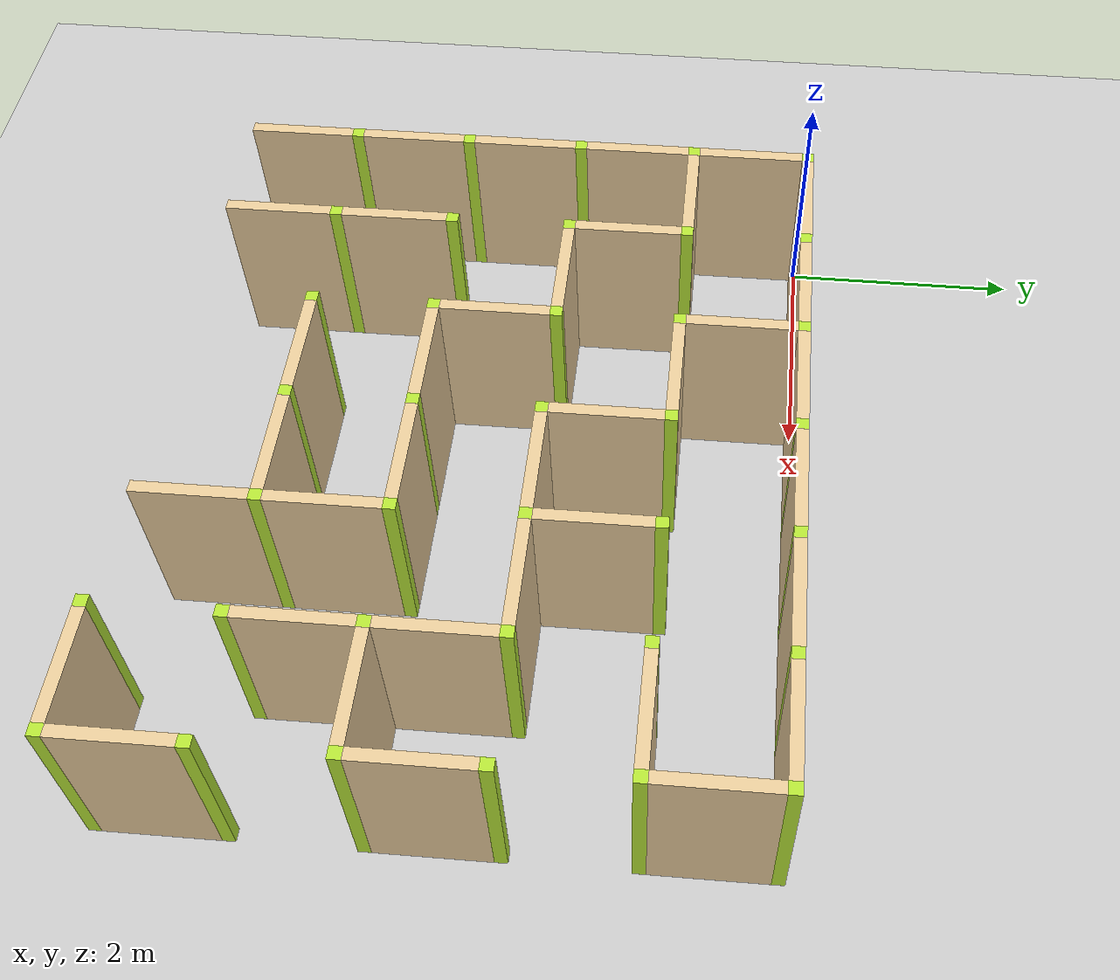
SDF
<sdf version="1.4">
 <world name="maze_world">
  <model name="ground">
   <static>true</static>
   <link name="ground_link">
    <collision name="collision1"><geometry><plane><normal>0 0 1</normal></plane></geometry></collision>
    <visual name="visual1"><geometry><plane><normal>0 0 1</normal><size>100 100</size></plane></geometry></visual>
   </link>
  </model>
  <model name="Untitled">
   <link name="Wall_0_0_h">
    <collision name="Wall_0_Collision">
     <geometry><box><size>0.9 0.1 1.5</size></box></geometry>
     <pose>0 0 0.75 0 -0 0</pose>
    </collision>
    <visual name="Wall_0_Visual">
     <pose>0 0 0.75 0 -0 0</pose>
     <geometry><box><size>0.9 0.1 1.5</size></box></geometry>
     <material>
      <script><uri>file://media/materials/scripts/gazebo.material</uri><name>Gazebo/Grey</name></script>
      <ambient>0.921569 0.807843 0.615686 1</ambient>
     </material>
     <meta><layer>0</layer></meta>
    </visual>
    <pose>0.5 0 0 0 -0 0</pose>
   </link>
   <link name="Wall_0_0_v">
    <collision name="Wall_0_Collision">
     <geometry><box><size>0.9 0.1 1.5</size></box></geometry>
     <pose>0 0 0.75 0 -0 0</pose>
    </collision>
    <visual name="Wall_0_Visual">
     <pose>0 0 0.75 0 -0 0</pose>
     <geometry><box><size>0.9 0.1 1.5</size></box></geometry>
     <material>
      <script><uri>file://media/materials/scripts/gazebo.material</uri><name>Gazebo/Grey</name></script>
      <ambient>0.921569 0.807843 0.615686 1</ambient>
     </material>
     <meta><layer>0</layer></meta>
    </visual>
    <pose>0 -0.5 0 0 -0 1.5708</pose>
   </link>
   <link name="Joint_0_0">
    <collision name="Wall_2_Collision">
     <geometry><box><size>0.1 0.1 1.5</size></box></geometry>
     <pose>0 0 0.75 0 -0 0</pose>
    </collision>
    <visual name="Wall_2_Visual">
     <pose>0 0 0.75 0 -0 0</pose>
     <geometry><box><size>0.1 0.1 1.5</size></box></geometry>
     <material>
      <script><uri>file://media/materials/scripts/gazebo.material</uri><name>Gazebo/Grey</name></script>
      <ambient>0.721569 0.907843 0.215686 1</ambient>
     </material>
     <meta><layer>0</layer></meta>
    </visual>
   </link>
   <link name="Wall_1_0_h">
    <collision name="Wall_0_Collision">
     <geometry><box><size>0.9 0.1 1.5</size></box></geometry>
     <pose>0 0 0.75 0 -0 0</pose>
    </collision>
    <visual name="Wall_0_Visual">
     <pose>0 0 0.75 0 -0 0</pose>
     <geometry><box><size>0.9 0.1 1.5</size></box></geometry>
     <material>
      <script><uri>file://media/materials/scripts/gazebo.material</uri><name>Gazebo/Grey</name></script>
      <ambient>0.921569 0.807843 0.615686 1</ambient>
     </material>
     <meta><layer>0</layer></meta>
    </visual>
    <pose>1.5 0 0 0 -0 0</pose>
   </link>
   <link name="Joint_1_0">
    <collision name="Wall_2_Collision">
     <geometry><box><size>0.1 0.1 1.5</size></box></geometry>
     <pose>0 0 0.75 0 -0 0</pose>
    </collision>
    <visual name="Wall_2_Visual">
     <pose>0 0 0.75 0 -0 0</pose>
     <geometry><box><size>0.1 0.1 1.5</size></box></geometry>
     <material>
      <script><uri>file://media/materials/scripts/gazebo.material</uri><name>Gazebo/Grey</name></script>
      <ambient>0.721569 0.907843 0.215686 1</ambient>
     </material>
     <meta><layer>0</layer></meta>
    </visual>
    <pose>1 0 0 0 -0 0</pose>
   </link>
   <link name="Wall_2_0_h">
    <collision name="Wall_0_Collision">
     <geometry><box><size>0.9 0.1 1.5</size></box></geometry>
     <pose>0 0 0.75 0 -0 0</pose>
    </collision>
    <visual name="Wall_0_Visual">
     <pose>0 0 0.75 0 -0 0</pose>
     <geometry><box><size>0.9 0.1 1.5</size></box></geometry>
     <material>
      <script><uri>file://media/materials/scripts/gazebo.material</uri><name>Gazebo/Grey</name></script>
      <ambient>0.921569 0.807843 0.615686 1</ambient>
     </material>
     <meta><layer>0</layer></meta>
    </visual>
    <pose>2.5 0 0 0 -0 0</pose>
   </link>
   <link name="Wall_2_0_v">
    <collision name="Wall_0_Collision">
     <geometry><box><size>0.9 0.1 1.5</size></box></geometry>
     <pose>0 0 0.75 0 -0 0</pose>
    </collision>
    <visual name="Wall_0_Visual">
     <pose>0 0 0.75 0 -0 0</pose>
     <geometry><box><size>0.9 0.1 1.5</size></box></geometry>
     <material>
      <script><uri>file://media/materials/scripts/gazebo.material</uri><name>Gazebo/Grey</name></script>
      <ambient>0.921569 0.807843 0.615686 1</ambient>
     </material>
     <meta><layer>0</layer></meta>
    </visual>
    <pose>2 -0.5 0 0 -0 1.5708</pose>
   </link>
   <link name="Joint_2_0">
    <collision name="Wall_2_Collision">
     <geometry><box><size>0.1 0.1 1.5</size></box></geometry>
     <pose>0 0 0.75 0 -0 0</pose>
    </collision>
    <visual name="Wall_2_Visual">
     <pose>0 0 0.75 0 -0 0</pose>
     <geometry><box><size>0.1 0.1 1.5</size></box></geometry>
     <material>
      <script><uri>file://media/materials/scripts/gazebo.material</uri><name>Gazebo/Grey</name></script>
      <ambient>0.721569 0.907843 0.215686 1</ambient>
     </material>
     <meta><layer>0</layer></meta>
    </visual>
    <pose>2 0 0 0 -0 0</pose>
   </link>
   <link name="Wall_3_0_h">
    <collision name="Wall_0_Collision">
     <geometry><box><size>0.9 0.1 1.5</size></box></geometry>
     <pose>0 0 0.75 0 -0 0</pose>
    </collision>
    <visual name="Wall_0_Visual">
     <pose>0 0 0.75 0 -0 0</pose>
     <geometry><box><size>0.9 0.1 1.5</size></box></geometry>
     <material>
      <script><uri>file://media/materials/scripts/gazebo.material</uri><name>Gazebo/Grey</name></script>
      <ambient>0.921569 0.807843 0.615686 1</ambient>
     </material>
     <meta><layer>0</layer></meta>
    </visual>
    <pose>3.5 0 0 0 -0 0</pose>
   </link>
   <link name="Joint_3_0">
    <collision name="Wall_2_Collision">
     <geometry><box><size>0.1 0.1 1.5</size></box></geometry>
     <pose>0 0 0.75 0 -0 0</pose>
    </collision>
    <visual name="Wall_2_Visual">
     <pose>0 0 0.75 0 -0 0</pose>
     <geometry><box><size>0.1 0.1 1.5</size></box></geometry>
     <material>
      <script><uri>file://media/materials/scripts/gazebo.material</uri><name>Gazebo/Grey</name></script>
      <ambient>0.721569 0.907843 0.215686 1</ambient>
     </material>
     <meta><layer>0</layer></meta>
    </visual>
    <pose>3 0 0 0 -0 0</pose>
   </link>
   <link name="Wall_4_0_h">
    <collision name="Wall_0_Collision">
     <geometry><box><size>0.9 0.1 1.5</size></box></geometry>
     <pose>0 0 0.75 0 -0 0</pose>
    </collision>
    <visual name="Wall_0_Visual">
     <pose>0 0 0.75 0 -0 0</pose>
     <geometry><box><size>0.9 0.1 1.5</size></box></geometry>
     <material>
      <script><uri>file://media/materials/scripts/gazebo.material</uri><name>Gazebo/Grey</name></script>
      <ambient>0.921569 0.807843 0.615686 1</ambient>
     </material>
     <meta><layer>0</layer></meta>
    </visual>
    <pose>4.5 0 0 0 -0 0</pose>
   </link>
   <link name="Joint_4_0">
    <collision name="Wall_2_Collision">
     <geometry><box><size>0.1 0.1 1.5</size></box></geometry>
     <pose>0 0 0.75 0 -0 0</pose>
    </collision>
    <visual name="Wall_2_Visual">
     <pose>0 0 0.75 0 -0 0</pose>
     <geometry><box><size>0.1 0.1 1.5</size></box></geometry>
     <material>
      <script><uri>file://media/materials/scripts/gazebo.material</uri><name>Gazebo/Grey</name></script>
      <ambient>0.721569 0.907843 0.215686 1</ambient>
     </material>
     <meta><layer>0</layer></meta>
    </visual>
    <pose>4 0 0 0 -0 0</pose>
   </link>
   <link name="Wall_5_0_h">
    <collision name="Wall_0_Collision">
     <geometry><box><size>0.9 0.1 1.5</size></box></geometry>
     <pose>0 0 0.75 0 -0 0</pose>
    </collision>
    <visual name="Wall_0_Visual">
     <pose>0 0 0.75 0 -0 0</pose>
     <geometry><box><size>0.9 0.1 1.5</size></box></geometry>
     <material>
      <script><uri>file://media/materials/scripts/gazebo.material</uri><name>Gazebo/Grey</name></script>
      <ambient>0.921569 0.807843 0.615686 1</ambient>
     </material>
     <meta><layer>0</layer></meta>
    </visual>
    <pose>5.5 0 0 0 -0 0</pose>
   </link>
   <link name="Joint_5_0">
    <collision name="Wall_2_Collision">
     <geometry><box><size>0.1 0.1 1.5</size></box></geometry>
     <pose>0 0 0.75 0 -0 0</pose>
    </collision>
    <visual name="Wall_2_Visual">
     <pose>0 0 0.75 0 -0 0</pose>
     <geometry><box><size>0.1 0.1 1.5</size></box></geometry>
     <material>
      <script><uri>file://media/materials/scripts/gazebo.material</uri><name>Gazebo/Grey</name></script>
      <ambient>0.721569 0.907843 0.215686 1</ambient>
     </material>
     <meta><layer>0</layer></meta>
    </visual>
    <pose>5 0 0 0 -0 0</pose>
   </link>
   <link name="Wall_6_0_v">
    <collision name="Wall_0_Collision">
     <geometry><box><size>0.9 0.1 1.5</size></box></geometry>
     <pose>0 0 0.75 0 -0 0</pose>
    </collision>
    <visual name="Wall_0_Visual">
     <pose>0 0 0.75 0 -0 0</pose>
     <geometry><box><size>0.9 0.1 1.5</size></box></geometry>
     <material>
      <script><uri>file://media/materials/scripts/gazebo.material</uri><name>Gazebo/Grey</name></script>
      <ambient>0.921569 0.807843 0.615686 1</ambient>
     </material>
     <meta><layer>0</layer></meta>
    </visual>
    <pose>6 -0.5 0 0 -0 1.5708</pose>
   </link>
   <link name="Joint_6_0">
    <collision name="Wall_2_Collision">
     <geometry><box><size>0.1 0.1 1.5</size></box></geometry>
     <pose>0 0 0.75 0 -0 0</pose>
    </collision>
    <visual name="Wall_2_Visual">
     <pose>0 0 0.75 0 -0 0</pose>
     <geometry><box><size>0.1 0.1 1.5</size></box></geometry>
     <material>
      <script><uri>file://media/materials/scripts/gazebo.material</uri><name>Gazebo/Grey</name></script>
      <ambient>0.721569 0.907843 0.215686 1</ambient>
     </material>
     <meta><layer>0</layer></meta>
    </visual>
    <pose>6 0 0 0 -0 0</pose>
   </link>
   <link name="Wall_0_1_h">
    <collision name="Wall_0_Collision">
     <geometry><box><size>0.9 0.1 1.5</size></box></geometry>
     <pose>0 0 0.75 0 -0 0</pose>
    </collision>
    <visual name="Wall_0_Visual">
     <pose>0 0 0.75 0 -0 0</pose>
     <geometry><box><size>0.9 0.1 1.5</size></box></geometry>
     <material>
      <script><uri>file://media/materials/scripts/gazebo.material</uri><name>Gazebo/Grey</name></script>
      <ambient>0.921569 0.807843 0.615686 1</ambient>
     </material>
     <meta><layer>0</layer></meta>
    </visual>
    <pose>0.5 -1 0 0 -0 0</pose>
   </link>
   <link name="Wall_0_1_v">
    <collision name="Wall_0_Collision">
     <geometry><box><size>0.9 0.1 1.5</size></box></geometry>
     <pose>0 0 0.75 0 -0 0</pose>
    </collision>
    <visual name="Wall_0_Visual">
     <pose>0 0 0.75 0 -0 0</pose>
     <geometry><box><size>0.9 0.1 1.5</size></box></geometry>
     <material>
      <script><uri>file://media/materials/scripts/gazebo.material</uri><name>Gazebo/Grey</name></script>
      <ambient>0.921569 0.807843 0.615686 1</ambient>
     </material>
     <meta><layer>0</layer></meta>
    </visual>
    <pose>0 -1.5 0 0 -0 1.5708</pose>
   </link>
   <link name="Joint_0_-1">
    <collision name="Wall_2_Collision">
     <geometry><box><size>0.1 0.1 1.5</size></box></geometry>
     <pose>0 0 0.75 0 -0 0</pose>
    </collision>
    <visual name="Wall_2_Visual">
     <pose>0 0 0.75 0 -0 0</pose>
     <geometry><box><size>0.1 0.1 1.5</size></box></geometry>
     <material>
      <script><uri>file://media/materials/scripts/gazebo.material</uri><name>Gazebo/Grey</name></script>
      <ambient>0.721569 0.907843 0.215686 1</ambient>
     </material>
     <meta><layer>0</layer></meta>
    </visual>
    <pose>0 -1 0 0 -0 0</pose>
   </link>
   <link name="Wall_1_1_v">
    <collision name="Wall_0_Collision">
     <geometry><box><size>0.9 0.1 1.5</size></box></geometry>
     <pose>0 0 0.75 0 -0 0</pose>
    </collision>
    <visual name="Wall_0_Visual">
     <pose>0 0 0.75 0 -0 0</pose>
     <geometry><box><size>0.9 0.1 1.5</size></box></geometry>
     <material>
      <script><uri>file://media/materials/scripts/gazebo.material</uri><name>Gazebo/Grey</name></script>
      <ambient>0.921569 0.807843 0.615686 1</ambient>
     </material>
     <meta><layer>0</layer></meta>
    </visual>
    <pose>1 -1.5 0 0 -0 1.5708</pose>
   </link>
   <link name="Joint_1_-1">
    <collision name="Wall_2_Collision">
     <geometry><box><size>0.1 0.1 1.5</size></box></geometry>
     <pose>0 0 0.75 0 -0 0</pose>
    </collision>
    <visual name="Wall_2_Visual">
     <pose>0 0 0.75 0 -0 0</pose>
     <geometry><box><size>0.1 0.1 1.5</size></box></geometry>
     <material>
      <script><uri>file://media/materials/scripts/gazebo.material</uri><name>Gazebo/Grey</name></script>
      <ambient>0.721569 0.907843 0.215686 1</ambient>
     </material>
     <meta><layer>0</layer></meta>
    </visual>
    <pose>1 -1 0 0 -0 0</pose>
   </link>
   <link name="Wall_2_1_h">
    <collision name="Wall_0_Collision">
     <geometry><box><size>0.9 0.1 1.5</size></box></geometry>
     <pose>0 0 0.75 0 -0 0</pose>
    </collision>
    <visual name="Wall_0_Visual">
     <pose>0 0 0.75 0 -0 0</pose>
     <geometry><box><size>0.9 0.1 1.5</size></box></geometry>
     <material>
      <script><uri>file://media/materials/scripts/gazebo.material</uri><name>Gazebo/Grey</name></script>
      <ambient>0.921569 0.807843 0.615686 1</ambient>
     </material>
     <meta><layer>0</layer></meta>
    </visual>
    <pose>2.5 -1 0 0 -0 0</pose>
   </link>
   <link name="Joint_2_-1">
    <collision name="Wall_2_Collision">
     <geometry><box><size>0.1 0.1 1.5</size></box></geometry>
     <pose>0 0 0.75 0 -0 0</pose>
    </collision>
    <visual name="Wall_2_Visual">
     <pose>0 0 0.75 0 -0 0</pose>
     <geometry><box><size>0.1 0.1 1.5</size></box></geometry>
     <material>
      <script><uri>file://media/materials/scripts/gazebo.material</uri><name>Gazebo/Grey</name></script>
      <ambient>0.721569 0.907843 0.215686 1</ambient>
     </material>
     <meta><layer>0</layer></meta>
    </visual>
    <pose>2 -1 0 0 -0 0</pose>
   </link>
   <link name="Wall_3_1_v">
    <collision name="Wall_0_Collision">
     <geometry><box><size>0.9 0.1 1.5</size></box></geometry>
     <pose>0 0 0.75 0 -0 0</pose>
    </collision>
    <visual name="Wall_0_Visual">
     <pose>0 0 0.75 0 -0 0</pose>
     <geometry><box><size>0.9 0.1 1.5</size></box></geometry>
     <material>
      <script><uri>file://media/materials/scripts/gazebo.material</uri><name>Gazebo/Grey</name></script>
      <ambient>0.921569 0.807843 0.615686 1</ambient>
     </material>
     <meta><layer>0</layer></meta>
    </visual>
    <pose>3 -1.5 0 0 -0 1.5708</pose>
   </link>
   <link name="Joint_3_-1">
    <collision name="Wall_2_Collision">
     <geometry><box><size>0.1 0.1 1.5</size></box></geometry>
     <pose>0 0 0.75 0 -0 0</pose>
    </collision>
    <visual name="Wall_2_Visual">
     <pose>0 0 0.75 0 -0 0</pose>
     <geometry><box><size>0.1 0.1 1.5</size></box></geometry>
     <material>
      <script><uri>file://media/materials/scripts/gazebo.material</uri><name>Gazebo/Grey</name></script>
      <ambient>0.721569 0.907843 0.215686 1</ambient>
     </material>
     <meta><layer>0</layer></meta>
    </visual>
    <pose>3 -1 0 0 -0 0</pose>
   </link>
   <link name="Wall_4_1_v">
    <collision name="Wall_0_Collision">
     <geometry><box><size>0.9 0.1 1.5</size></box></geometry>
     <pose>0 0 0.75 0 -0 0</pose>
    </collision>
    <visual name="Wall_0_Visual">
     <pose>0 0 0.75 0 -0 0</pose>
     <geometry><box><size>0.9 0.1 1.5</size></box></geometry>
     <material>
      <script><uri>file://media/materials/scripts/gazebo.material</uri><name>Gazebo/Grey</name></script>
      <ambient>0.921569 0.807843 0.615686 1</ambient>
     </material>
     <meta><layer>0</layer></meta>
    </visual>
    <pose>4 -1.5 0 0 -0 1.5708</pose>
   </link>
   <link name="Joint_4_-1">
    <collision name="Wall_2_Collision">
     <geometry><box><size>0.1 0.1 1.5</size></box></geometry>
     <pose>0 0 0.75 0 -0 0</pose>
    </collision>
    <visual name="Wall_2_Visual">
     <pose>0 0 0.75 0 -0 0</pose>
     <geometry><box><size>0.1 0.1 1.5</size></box></geometry>
     <material>
      <script><uri>file://media/materials/scripts/gazebo.material</uri><name>Gazebo/Grey</name></script>
      <ambient>0.721569 0.907843 0.215686 1</ambient>
     </material>
     <meta><layer>0</layer></meta>
    </visual>
    <pose>4 -1 0 0 -0 0</pose>
   </link>
   <link name="Wall_5_1_h">
    <collision name="Wall_0_Collision">
     <geometry><box><size>0.9 0.1 1.5</size></box></geometry>
     <pose>0 0 0.75 0 -0 0</pose>
    </collision>
    <visual name="Wall_0_Visual">
     <pose>0 0 0.75 0 -0 0</pose>
     <geometry><box><size>0.9 0.1 1.5</size></box></geometry>
     <material>
      <script><uri>file://media/materials/scripts/gazebo.material</uri><name>Gazebo/Grey</name></script>
      <ambient>0.921569 0.807843 0.615686 1</ambient>
     </material>
     <meta><layer>0</layer></meta>
    </visual>
    <pose>5.5 -1 0 0 -0 0</pose>
   </link>
   <link name="Joint_5_-1">
    <collision name="Wall_2_Collision">
     <geometry><box><size>0.1 0.1 1.5</size></box></geometry>
     <pose>0 0 0.75 0 -0 0</pose>
    </collision>
    <visual name="Wall_2_Visual">
     <pose>0 0 0.75 0 -0 0</pose>
     <geometry><box><size>0.1 0.1 1.5</size></box></geometry>
     <material>
      <script><uri>file://media/materials/scripts/gazebo.material</uri><name>Gazebo/Grey</name></script>
      <ambient>0.721569 0.907843 0.215686 1</ambient>
     </material>
     <meta><layer>0</layer></meta>
    </visual>
    <pose>5 -1 0 0 -0 0</pose>
   </link>
   <link name="Joint_6_-1">
    <collision name="Wall_2_Collision">
     <geometry><box><size>0.1 0.1 1.5</size></box></geometry>
     <pose>0 0 0.75 0 -0 0</pose>
    </collision>
    <visual name="Wall_2_Visual">
     <pose>0 0 0.75 0 -0 0</pose>
     <geometry><box><size>0.1 0.1 1.5</size></box></geometry>
     <material>
      <script><uri>file://media/materials/scripts/gazebo.material</uri><name>Gazebo/Grey</name></script>
      <ambient>0.721569 0.907843 0.215686 1</ambient>
     </material>
     <meta><layer>0</layer></meta>
    </visual>
    <pose>6 -1 0 0 -0 0</pose>
   </link>
   <link name="Wall_0_2_v">
    <collision name="Wall_0_Collision">
     <geometry><box><size>0.9 0.1 1.5</size></box></geometry>
     <pose>0 0 0.75 0 -0 0</pose>
    </collision>
    <visual name="Wall_0_Visual">
     <pose>0 0 0.75 0 -0 0</pose>
     <geometry><box><size>0.9 0.1 1.5</size></box></geometry>
     <material>
      <script><uri>file://media/materials/scripts/gazebo.material</uri><name>Gazebo/Grey</name></script>
      <ambient>0.921569 0.807843 0.615686 1</ambient>
     </material>
     <meta><layer>0</layer></meta>
    </visual>
    <pose>0 -2.5 0 0 -0 1.5708</pose>
   </link>
   <link name="Joint_0_-2">
    <collision name="Wall_2_Collision">
     <geometry><box><size>0.1 0.1 1.5</size></box></geometry>
     <pose>0 0 0.75 0 -0 0</pose>
    </collision>
    <visual name="Wall_2_Visual">
     <pose>0 0 0.75 0 -0 0</pose>
     <geometry><box><size>0.1 0.1 1.5</size></box></geometry>
     <material>
      <script><uri>file://media/materials/scripts/gazebo.material</uri><name>Gazebo/Grey</name></script>
      <ambient>0.721569 0.907843 0.215686 1</ambient>
     </material>
     <meta><layer>0</layer></meta>
    </visual>
    <pose>0 -2 0 0 -0 0</pose>
   </link>
   <link name="Wall_1_2_h">
    <collision name="Wall_0_Collision">
     <geometry><box><size>0.9 0.1 1.5</size></box></geometry>
     <pose>0 0 0.75 0 -0 0</pose>
    </collision>
    <visual name="Wall_0_Visual">
     <pose>0 0 0.75 0 -0 0</pose>
     <geometry><box><size>0.9 0.1 1.5</size></box></geometry>
     <material>
      <script><uri>file://media/materials/scripts/gazebo.material</uri><name>Gazebo/Grey</name></script>
      <ambient>0.921569 0.807843 0.615686 1</ambient>
     </material>
     <meta><layer>0</layer></meta>
    </visual>
    <pose>1.5 -2 0 0 -0 0</pose>
   </link>
   <link name="Joint_1_-2">
    <collision name="Wall_2_Collision">
     <geometry><box><size>0.1 0.1 1.5</size></box></geometry>
     <pose>0 0 0.75 0 -0 0</pose>
    </collision>
    <visual name="Wall_2_Visual">
     <pose>0 0 0.75 0 -0 0</pose>
     <geometry><box><size>0.1 0.1 1.5</size></box></geometry>
     <material>
      <script><uri>file://media/materials/scripts/gazebo.material</uri><name>Gazebo/Grey</name></script>
      <ambient>0.721569 0.907843 0.215686 1</ambient>
     </material>
     <meta><layer>0</layer></meta>
    </visual>
    <pose>1 -2 0 0 -0 0</pose>
   </link>
   <link name="Wall_2_2_v">
    <collision name="Wall_0_Collision">
     <geometry><box><size>0.9 0.1 1.5</size></box></geometry>
     <pose>0 0 0.75 0 -0 0</pose>
    </collision>
    <visual name="Wall_0_Visual">
     <pose>0 0 0.75 0 -0 0</pose>
     <geometry><box><size>0.9 0.1 1.5</size></box></geometry>
     <material>
      <script><uri>file://media/materials/scripts/gazebo.material</uri><name>Gazebo/Grey</name></script>
      <ambient>0.921569 0.807843 0.615686 1</ambient>
     </material>
     <meta><layer>0</layer></meta>
    </visual>
    <pose>2 -2.5 0 0 -0 1.5708</pose>
   </link>
   <link name="Joint_2_-2">
    <collision name="Wall_2_Collision">
     <geometry><box><size>0.1 0.1 1.5</size></box></geometry>
     <pose>0 0 0.75 0 -0 0</pose>
    </collision>
    <visual name="Wall_2_Visual">
     <pose>0 0 0.75 0 -0 0</pose>
     <geometry><box><size>0.1 0.1 1.5</size></box></geometry>
     <material>
      <script><uri>file://media/materials/scripts/gazebo.material</uri><name>Gazebo/Grey</name></script>
      <ambient>0.721569 0.907843 0.215686 1</ambient>
     </material>
     <meta><layer>0</layer></meta>
    </visual>
    <pose>2 -2 0 0 -0 0</pose>
   </link>
   <link name="Wall_3_2_h">
    <collision name="Wall_0_Collision">
     <geometry><box><size>0.9 0.1 1.5</size></box></geometry>
     <pose>0 0 0.75 0 -0 0</pose>
    </collision>
    <visual name="Wall_0_Visual">
     <pose>0 0 0.75 0 -0 0</pose>
     <geometry><box><size>0.9 0.1 1.5</size></box></geometry>
     <material>
      <script><uri>file://media/materials/scripts/gazebo.material</uri><name>Gazebo/Grey</name></script>
      <ambient>0.921569 0.807843 0.615686 1</ambient>
     </material>
     <meta><layer>0</layer></meta>
    </visual>
    <pose>3.5 -2 0 0 -0 0</pose>
   </link>
   <link name="Joint_3_-2">
    <collision name="Wall_2_Collision">
     <geometry><box><size>0.1 0.1 1.5</size></box></geometry>
     <pose>0 0 0.75 0 -0 0</pose>
    </collision>
    <visual name="Wall_2_Visual">
     <pose>0 0 0.75 0 -0 0</pose>
     <geometry><box><size>0.1 0.1 1.5</size></box></geometry>
     <material>
      <script><uri>file://media/materials/scripts/gazebo.material</uri><name>Gazebo/Grey</name></script>
      <ambient>0.721569 0.907843 0.215686 1</ambient>
     </material>
     <meta><layer>0</layer></meta>
    </visual>
    <pose>3 -2 0 0 -0 0</pose>
   </link>
   <link name="Wall_4_2_h">
    <collision name="Wall_0_Collision">
     <geometry><box><size>0.9 0.1 1.5</size></box></geometry>
     <pose>0 0 0.75 0 -0 0</pose>
    </collision>
    <visual name="Wall_0_Visual">
     <pose>0 0 0.75 0 -0 0</pose>
     <geometry><box><size>0.9 0.1 1.5</size></box></geometry>
     <material>
      <script><uri>file://media/materials/scripts/gazebo.material</uri><name>Gazebo/Grey</name></script>
      <ambient>0.921569 0.807843 0.615686 1</ambient>
     </material>
     <meta><layer>0</layer></meta>
    </visual>
    <pose>4.5 -2 0 0 -0 0</pose>
   </link>
   <link name="Joint_4_-2">
    <collision name="Wall_2_Collision">
     <geometry><box><size>0.1 0.1 1.5</size></box></geometry>
     <pose>0 0 0.75 0 -0 0</pose>
    </collision>
    <visual name="Wall_2_Visual">
     <pose>0 0 0.75 0 -0 0</pose>
     <geometry><box><size>0.1 0.1 1.5</size></box></geometry>
     <material>
      <script><uri>file://media/materials/scripts/gazebo.material</uri><name>Gazebo/Grey</name></script>
      <ambient>0.721569 0.907843 0.215686 1</ambient>
     </material>
     <meta><layer>0</layer></meta>
    </visual>
    <pose>4 -2 0 0 -0 0</pose>
   </link>
   <link name="Wall_5_2_v">
    <collision name="Wall_0_Collision">
     <geometry><box><size>0.9 0.1 1.5</size></box></geometry>
     <pose>0 0 0.75 0 -0 0</pose>
    </collision>
    <visual name="Wall_0_Visual">
     <pose>0 0 0.75 0 -0 0</pose>
     <geometry><box><size>0.9 0.1 1.5</size></box></geometry>
     <material>
      <script><uri>file://media/materials/scripts/gazebo.material</uri><name>Gazebo/Grey</name></script>
      <ambient>0.921569 0.807843 0.615686 1</ambient>
     </material>
     <meta><layer>0</layer></meta>
    </visual>
    <pose>5 -2.5 0 0 -0 1.5708</pose>
   </link>
   <link name="Joint_5_-2">
    <collision name="Wall_2_Collision">
     <geometry><box><size>0.1 0.1 1.5</size></box></geometry>
     <pose>0 0 0.75 0 -0 0</pose>
    </collision>
    <visual name="Wall_2_Visual">
     <pose>0 0 0.75 0 -0 0</pose>
     <geometry><box><size>0.1 0.1 1.5</size></box></geometry>
     <material>
      <script><uri>file://media/materials/scripts/gazebo.material</uri><name>Gazebo/Grey</name></script>
      <ambient>0.721569 0.907843 0.215686 1</ambient>
     </material>
     <meta><layer>0</layer></meta>
    </visual>
    <pose>5 -2 0 0 -0 0</pose>
   </link>
   <link name="Wall_6_2_v">
    <collision name="Wall_0_Collision">
     <geometry><box><size>0.9 0.1 1.5</size></box></geometry>
     <pose>0 0 0.75 0 -0 0</pose>
    </collision>
    <visual name="Wall_0_Visual">
     <pose>0 0 0.75 0 -0 0</pose>
     <geometry><box><size>0.9 0.1 1.5</size></box></geometry>
     <material>
      <script><uri>file://media/materials/scripts/gazebo.material</uri><name>Gazebo/Grey</name></script>
      <ambient>0.921569 0.807843 0.615686 1</ambient>
     </material>
     <meta><layer>0</layer></meta>
    </visual>
    <pose>6 -2.5 0 0 -0 1.5708</pose>
   </link>
   <link name="Joint_6_-2">
    <collision name="Wall_2_Collision">
     <geometry><box><size>0.1 0.1 1.5</size></box></geometry>
     <pose>0 0 0.75 0 -0 0</pose>
    </collision>
    <visual name="Wall_2_Visual">
     <pose>0 0 0.75 0 -0 0</pose>
     <geometry><box><size>0.1 0.1 1.5</size></box></geometry>
     <material>
      <script><uri>file://media/materials/scripts/gazebo.material</uri><name>Gazebo/Grey</name></script>
      <ambient>0.721569 0.907843 0.215686 1</ambient>
     </material>
     <meta><layer>0</layer></meta>
    </visual>
    <pose>6 -2 0 0 -0 0</pose>
   </link>
   <link name="Wall_0_3_v">
    <collision name="Wall_0_Collision">
     <geometry><box><size>0.9 0.1 1.5</size></box></geometry>
     <pose>0 0 0.75 0 -0 0</pose>
    </collision>
    <visual name="Wall_0_Visual">
     <pose>0 0 0.75 0 -0 0</pose>
     <geometry><box><size>0.9 0.1 1.5</size></box></geometry>
     <material>
      <script><uri>file://media/materials/scripts/gazebo.material</uri><name>Gazebo/Grey</name></script>
      <ambient>0.921569 0.807843 0.615686 1</ambient>
     </material>
     <meta><layer>0</layer></meta>
    </visual>
    <pose>0 -3.5 0 0 -0 1.5708</pose>
   </link>
   <link name="Joint_0_-3">
    <collision name="Wall_2_Collision">
     <geometry><box><size>0.1 0.1 1.5</size></box></geometry>
     <pose>0 0 0.75 0 -0 0</pose>
    </collision>
    <visual name="Wall_2_Visual">
     <pose>0 0 0.75 0 -0 0</pose>
     <geometry><box><size>0.1 0.1 1.5</size></box></geometry>
     <material>
      <script><uri>file://media/materials/scripts/gazebo.material</uri><name>Gazebo/Grey</name></script>
      <ambient>0.721569 0.907843 0.215686 1</ambient>
     </material>
     <meta><layer>0</layer></meta>
    </visual>
    <pose>0 -3 0 0 -0 0</pose>
   </link>
   <link name="Wall_1_3_v">
    <collision name="Wall_0_Collision">
     <geometry><box><size>0.9 0.1 1.5</size></box></geometry>
     <pose>0 0 0.75 0 -0 0</pose>
    </collision>
    <visual name="Wall_0_Visual">
     <pose>0 0 0.75 0 -0 0</pose>
     <geometry><box><size>0.9 0.1 1.5</size></box></geometry>
     <material>
      <script><uri>file://media/materials/scripts/gazebo.material</uri><name>Gazebo/Grey</name></script>
      <ambient>0.921569 0.807843 0.615686 1</ambient>
     </material>
     <meta><layer>0</layer></meta>
    </visual>
    <pose>1 -3.5 0 0 -0 1.5708</pose>
   </link>
   <link name="Joint_1_-3">
    <collision name="Wall_2_Collision">
     <geometry><box><size>0.1 0.1 1.5</size></box></geometry>
     <pose>0 0 0.75 0 -0 0</pose>
    </collision>
    <visual name="Wall_2_Visual">
     <pose>0 0 0.75 0 -0 0</pose>
     <geometry><box><size>0.1 0.1 1.5</size></box></geometry>
     <material>
      <script><uri>file://media/materials/scripts/gazebo.material</uri><name>Gazebo/Grey</name></script>
      <ambient>0.721569 0.907843 0.215686 1</ambient>
     </material>
     <meta><layer>0</layer></meta>
    </visual>
    <pose>1 -3 0 0 -0 0</pose>
   </link>
   <link name="Wall_2_3_h">
    <collision name="Wall_0_Collision">
     <geometry><box><size>0.9 0.1 1.5</size></box></geometry>
     <pose>0 0 0.75 0 -0 0</pose>
    </collision>
    <visual name="Wall_0_Visual">
     <pose>0 0 0.75 0 -0 0</pose>
     <geometry><box><size>0.9 0.1 1.5</size></box></geometry>
     <material>
      <script><uri>file://media/materials/scripts/gazebo.material</uri><name>Gazebo/Grey</name></script>
      <ambient>0.921569 0.807843 0.615686 1</ambient>
     </material>
     <meta><layer>0</layer></meta>
    </visual>
    <pose>2.5 -3 0 0 -0 0</pose>
   </link>
   <link name="Joint_2_-3">
    <collision name="Wall_2_Collision">
     <geometry><box><size>0.1 0.1 1.5</size></box></geometry>
     <pose>0 0 0.75 0 -0 0</pose>
    </collision>
    <visual name="Wall_2_Visual">
     <pose>0 0 0.75 0 -0 0</pose>
     <geometry><box><size>0.1 0.1 1.5</size></box></geometry>
     <material>
      <script><uri>file://media/materials/scripts/gazebo.material</uri><name>Gazebo/Grey</name></script>
      <ambient>0.721569 0.907843 0.215686 1</ambient>
     </material>
     <meta><layer>0</layer></meta>
    </visual>
    <pose>2 -3 0 0 -0 0</pose>
   </link>
   <link name="Wall_3_3_h">
    <collision name="Wall_0_Collision">
     <geometry><box><size>0.9 0.1 1.5</size></box></geometry>
     <pose>0 0 0.75 0 -0 0</pose>
    </collision>
    <visual name="Wall_0_Visual">
     <pose>0 0 0.75 0 -0 0</pose>
     <geometry><box><size>0.9 0.1 1.5</size></box></geometry>
     <material>
      <script><uri>file://media/materials/scripts/gazebo.material</uri><name>Gazebo/Grey</name></script>
      <ambient>0.921569 0.807843 0.615686 1</ambient>
     </material>
     <meta><layer>0</layer></meta>
    </visual>
    <pose>3.5 -3 0 0 -0 0</pose>
   </link>
   <link name="Joint_3_-3">
    <collision name="Wall_2_Collision">
     <geometry><box><size>0.1 0.1 1.5</size></box></geometry>
     <pose>0 0 0.75 0 -0 0</pose>
    </collision>
    <visual name="Wall_2_Visual">
     <pose>0 0 0.75 0 -0 0</pose>
     <geometry><box><size>0.1 0.1 1.5</size></box></geometry>
     <material>
      <script><uri>file://media/materials/scripts/gazebo.material</uri><name>Gazebo/Grey</name></script>
      <ambient>0.721569 0.907843 0.215686 1</ambient>
     </material>
     <meta><layer>0</layer></meta>
    </visual>
    <pose>3 -3 0 0 -0 0</pose>
   </link>
   <link name="Wall_4_3_v">
    <collision name="Wall_0_Collision">
     <geometry><box><size>0.9 0.1 1.5</size></box></geometry>
     <pose>0 0 0.75 0 -0 0</pose>
    </collision>
    <visual name="Wall_0_Visual">
     <pose>0 0 0.75 0 -0 0</pose>
     <geometry><box><size>0.9 0.1 1.5</size></box></geometry>
     <material>
      <script><uri>file://media/materials/scripts/gazebo.material</uri><name>Gazebo/Grey</name></script>
      <ambient>0.921569 0.807843 0.615686 1</ambient>
     </material>
     <meta><layer>0</layer></meta>
    </visual>
    <pose>4 -3.5 0 0 -0 1.5708</pose>
   </link>
   <link name="Joint_4_-3">
    <collision name="Wall_2_Collision">
     <geometry><box><size>0.1 0.1 1.5</size></box></geometry>
     <pose>0 0 0.75 0 -0 0</pose>
    </collision>
    <visual name="Wall_2_Visual">
     <pose>0 0 0.75 0 -0 0</pose>
     <geometry><box><size>0.1 0.1 1.5</size></box></geometry>
     <material>
      <script><uri>file://media/materials/scripts/gazebo.material</uri><name>Gazebo/Grey</name></script>
      <ambient>0.721569 0.907843 0.215686 1</ambient>
     </material>
     <meta><layer>0</layer></meta>
    </visual>
    <pose>4 -3 0 0 -0 0</pose>
   </link>
   <link name="Wall_5_3_h">
    <collision name="Wall_0_Collision">
     <geometry><box><size>0.9 0.1 1.5</size></box></geometry>
     <pose>0 0 0.75 0 -0 0</pose>
    </collision>
    <visual name="Wall_0_Visual">
     <pose>0 0 0.75 0 -0 0</pose>
     <geometry><box><size>0.9 0.1 1.5</size></box></geometry>
     <material>
      <script><uri>file://media/materials/scripts/gazebo.material</uri><name>Gazebo/Grey</name></script>
      <ambient>0.921569 0.807843 0.615686 1</ambient>
     </material>
     <meta><layer>0</layer></meta>
    </visual>
    <pose>5.5 -3 0 0 -0 0</pose>
   </link>
   <link name="Wall_5_3_v">
    <collision name="Wall_0_Collision">
     <geometry><box><size>0.9 0.1 1.5</size></box></geometry>
     <pose>0 0 0.75 0 -0 0</pose>
    </collision>
    <visual name="Wall_0_Visual">
     <pose>0 0 0.75 0 -0 0</pose>
     <geometry><box><size>0.9 0.1 1.5</size></box></geometry>
     <material>
      <script><uri>file://media/materials/scripts/gazebo.material</uri><name>Gazebo/Grey</name></script>
      <ambient>0.921569 0.807843 0.615686 1</ambient>
     </material>
     <meta><layer>0</layer></meta>
    </visual>
    <pose>5 -3.5 0 0 -0 1.5708</pose>
   </link>
   <link name="Joint_5_-3">
    <collision name="Wall_2_Collision">
     <geometry><box><size>0.1 0.1 1.5</size></box></geometry>
     <pose>0 0 0.75 0 -0 0</pose>
    </collision>
    <visual name="Wall_2_Visual">
     <pose>0 0 0.75 0 -0 0</pose>
     <geometry><box><size>0.1 0.1 1.5</size></box></geometry>
     <material>
      <script><uri>file://media/materials/scripts/gazebo.material</uri><name>Gazebo/Grey</name></script>
      <ambient>0.721569 0.907843 0.215686 1</ambient>
     </material>
     <meta><layer>0</layer></meta>
    </visual>
    <pose>5 -3 0 0 -0 0</pose>
   </link>
   <link name="Joint_6_-3">
    <collision name="Wall_2_Collision">
     <geometry><box><size>0.1 0.1 1.5</size></box></geometry>
     <pose>0 0 0.75 0 -0 0</pose>
    </collision>
    <visual name="Wall_2_Visual">
     <pose>0 0 0.75 0 -0 0</pose>
     <geometry><box><size>0.1 0.1 1.5</size></box></geometry>
     <material>
      <script><uri>file://media/materials/scripts/gazebo.material</uri><name>Gazebo/Grey</name></script>
      <ambient>0.721569 0.907843 0.215686 1</ambient>
     </material>
     <meta><layer>0</layer></meta>
    </visual>
    <pose>6 -3 0 0 -0 0</pose>
   </link>
   <link name="Wall_0_4_v">
    <collision name="Wall_0_Collision">
     <geometry><box><size>0.9 0.1 1.5</size></box></geometry>
     <pose>0 0 0.75 0 -0 0</pose>
    </collision>
    <visual name="Wall_0_Visual">
     <pose>0 0 0.75 0 -0 0</pose>
     <geometry><box><size>0.9 0.1 1.5</size></box></geometry>
     <material>
      <script><uri>file://media/materials/scripts/gazebo.material</uri><name>Gazebo/Grey</name></script>
      <ambient>0.921569 0.807843 0.615686 1</ambient>
     </material>
     <meta><layer>0</layer></meta>
    </visual>
    <pose>0 -4.5 0 0 -0 1.5708</pose>
   </link>
   <link name="Joint_0_-4">
    <collision name="Wall_2_Collision">
     <geometry><box><size>0.1 0.1 1.5</size></box></geometry>
     <pose>0 0 0.75 0 -0 0</pose>
    </collision>
    <visual name="Wall_2_Visual">
     <pose>0 0 0.75 0 -0 0</pose>
     <geometry><box><size>0.1 0.1 1.5</size></box></geometry>
     <material>
      <script><uri>file://media/materials/scripts/gazebo.material</uri><name>Gazebo/Grey</name></script>
      <ambient>0.721569 0.907843 0.215686 1</ambient>
     </material>
     <meta><layer>0</layer></meta>
    </visual>
    <pose>0 -4 0 0 -0 0</pose>
   </link>
   <link name="Wall_1_4_v">
    <collision name="Wall_0_Collision">
     <geometry><box><size>0.9 0.1 1.5</size></box></geometry>
     <pose>0 0 0.75 0 -0 0</pose>
    </collision>
    <visual name="Wall_0_Visual">
     <pose>0 0 0.75 0 -0 0</pose>
     <geometry><box><size>0.9 0.1 1.5</size></box></geometry>
     <material>
      <script><uri>file://media/materials/scripts/gazebo.material</uri><name>Gazebo/Grey</name></script>
      <ambient>0.921569 0.807843 0.615686 1</ambient>
     </material>
     <meta><layer>0</layer></meta>
    </visual>
    <pose>1 -4.5 0 0 -0 1.5708</pose>
   </link>
   <link name="Joint_1_-4">
    <collision name="Wall_2_Collision">
     <geometry><box><size>0.1 0.1 1.5</size></box></geometry>
     <pose>0 0 0.75 0 -0 0</pose>
    </collision>
    <visual name="Wall_2_Visual">
     <pose>0 0 0.75 0 -0 0</pose>
     <geometry><box><size>0.1 0.1 1.5</size></box></geometry>
     <material>
      <script><uri>file://media/materials/scripts/gazebo.material</uri><name>Gazebo/Grey</name></script>
      <ambient>0.721569 0.907843 0.215686 1</ambient>
     </material>
     <meta><layer>0</layer></meta>
    </visual>
    <pose>1 -4 0 0 -0 0</pose>
   </link>
   <link name="Wall_2_4_h">
    <collision name="Wall_0_Collision">
     <geometry><box><size>0.9 0.1 1.5</size></box></geometry>
     <pose>0 0 0.75 0 -0 0</pose>
    </collision>
    <visual name="Wall_0_Visual">
     <pose>0 0 0.75 0 -0 0</pose>
     <geometry><box><size>0.9 0.1 1.5</size></box></geometry>
     <material>
      <script><uri>file://media/materials/scripts/gazebo.material</uri><name>Gazebo/Grey</name></script>
      <ambient>0.921569 0.807843 0.615686 1</ambient>
     </material>
     <meta><layer>0</layer></meta>
    </visual>
    <pose>2.5 -4 0 0 -0 0</pose>
   </link>
   <link name="Joint_2_-4">
    <collision name="Wall_2_Collision">
     <geometry><box><size>0.1 0.1 1.5</size></box></geometry>
     <pose>0 0 0.75 0 -0 0</pose>
    </collision>
    <visual name="Wall_2_Visual">
     <pose>0 0 0.75 0 -0 0</pose>
     <geometry><box><size>0.1 0.1 1.5</size></box></geometry>
     <material>
      <script><uri>file://media/materials/scripts/gazebo.material</uri><name>Gazebo/Grey</name></script>
      <ambient>0.721569 0.907843 0.215686 1</ambient>
     </material>
     <meta><layer>0</layer></meta>
    </visual>
    <pose>2 -4 0 0 -0 0</pose>
   </link>
   <link name="Wall_3_4_h">
    <collision name="Wall_0_Collision">
     <geometry><box><size>0.9 0.1 1.5</size></box></geometry>
     <pose>0 0 0.75 0 -0 0</pose>
    </collision>
    <visual name="Wall_0_Visual">
     <pose>0 0 0.75 0 -0 0</pose>
     <geometry><box><size>0.9 0.1 1.5</size></box></geometry>
     <material>
      <script><uri>file://media/materials/scripts/gazebo.material</uri><name>Gazebo/Grey</name></script>
      <ambient>0.921569 0.807843 0.615686 1</ambient>
     </material>
     <meta><layer>0</layer></meta>
    </visual>
    <pose>3.5 -4 0 0 -0 0</pose>
   </link>
   <link name="Joint_3_-4">
    <collision name="Wall_2_Collision">
     <geometry><box><size>0.1 0.1 1.5</size></box></geometry>
     <pose>0 0 0.75 0 -0 0</pose>
    </collision>
    <visual name="Wall_2_Visual">
     <pose>0 0 0.75 0 -0 0</pose>
     <geometry><box><size>0.1 0.1 1.5</size></box></geometry>
     <material>
      <script><uri>file://media/materials/scripts/gazebo.material</uri><name>Gazebo/Grey</name></script>
      <ambient>0.721569 0.907843 0.215686 1</ambient>
     </material>
     <meta><layer>0</layer></meta>
    </visual>
    <pose>3 -4 0 0 -0 0</pose>
   </link>
   <link name="Wall_4_4_v">
    <collision name="Wall_0_Collision">
     <geometry><box><size>0.9 0.1 1.5</size></box></geometry>
     <pose>0 0 0.75 0 -0 0</pose>
    </collision>
    <visual name="Wall_0_Visual">
     <pose>0 0 0.75 0 -0 0</pose>
     <geometry><box><size>0.9 0.1 1.5</size></box></geometry>
     <material>
      <script><uri>file://media/materials/scripts/gazebo.material</uri><name>Gazebo/Grey</name></script>
      <ambient>0.921569 0.807843 0.615686 1</ambient>
     </material>
     <meta><layer>0</layer></meta>
    </visual>
    <pose>4 -4.5 0 0 -0 1.5708</pose>
   </link>
   <link name="Joint_4_-4">
    <collision name="Wall_2_Collision">
     <geometry><box><size>0.1 0.1 1.5</size></box></geometry>
     <pose>0 0 0.75 0 -0 0</pose>
    </collision>
    <visual name="Wall_2_Visual">
     <pose>0 0 0.75 0 -0 0</pose>
     <geometry><box><size>0.1 0.1 1.5</size></box></geometry>
     <material>
      <script><uri>file://media/materials/scripts/gazebo.material</uri><name>Gazebo/Grey</name></script>
      <ambient>0.721569 0.907843 0.215686 1</ambient>
     </material>
     <meta><layer>0</layer></meta>
    </visual>
    <pose>4 -4 0 0 -0 0</pose>
   </link>
   <link name="Joint_5_-4">
    <collision name="Wall_2_Collision">
     <geometry><box><size>0.1 0.1 1.5</size></box></geometry>
     <pose>0 0 0.75 0 -0 0</pose>
    </collision>
    <visual name="Wall_2_Visual">
     <pose>0 0 0.75 0 -0 0</pose>
     <geometry><box><size>0.1 0.1 1.5</size></box></geometry>
     <material>
      <script><uri>file://media/materials/scripts/gazebo.material</uri><name>Gazebo/Grey</name></script>
      <ambient>0.721569 0.907843 0.215686 1</ambient>
     </material>
     <meta><layer>0</layer></meta>
    </visual>
    <pose>5 -4 0 0 -0 0</pose>
   </link>
   <link name="Wall_6_4_v">
    <collision name="Wall_0_Collision">
     <geometry><box><size>0.9 0.1 1.5</size></box></geometry>
     <pose>0 0 0.75 0 -0 0</pose>
    </collision>
    <visual name="Wall_0_Visual">
     <pose>0 0 0.75 0 -0 0</pose>
     <geometry><box><size>0.9 0.1 1.5</size></box></geometry>
     <material>
      <script><uri>file://media/materials/scripts/gazebo.material</uri><name>Gazebo/Grey</name></script>
      <ambient>0.921569 0.807843 0.615686 1</ambient>
     </material>
     <meta><layer>0</layer></meta>
    </visual>
    <pose>6 -4.5 0 0 -0 1.5708</pose>
   </link>
   <link name="Joint_6_-4">
    <collision name="Wall_2_Collision">
     <geometry><box><size>0.1 0.1 1.5</size></box></geometry>
     <pose>0 0 0.75 0 -0 0</pose>
    </collision>
    <visual name="Wall_2_Visual">
     <pose>0 0 0.75 0 -0 0</pose>
     <geometry><box><size>0.1 0.1 1.5</size></box></geometry>
     <material>
      <script><uri>file://media/materials/scripts/gazebo.material</uri><name>Gazebo/Grey</name></script>
      <ambient>0.721569 0.907843 0.215686 1</ambient>
     </material>
     <meta><layer>0</layer></meta>
    </visual>
    <pose>6 -4 0 0 -0 0</pose>
   </link>
   <link name="Wall_5_5_h">
    <collision name="Wall_0_Collision">
     <geometry><box><size>0.9 0.1 1.5</size></box></geometry>
     <pose>0 0 0.75 0 -0 0</pose>
    </collision>
    <visual name="Wall_0_Visual">
     <pose>0 0 0.75 0 -0 0</pose>
     <geometry><box><size>0.9 0.1 1.5</size></box></geometry>
     <material>
      <script><uri>file://media/materials/scripts/gazebo.material</uri><name>Gazebo/Grey</name></script>
      <ambient>0.921569 0.807843 0.615686 1</ambient>
     </material>
     <meta><layer>0</layer></meta>
    </visual>
    <pose>5.5 -5 0 0 -0 0</pose>
   </link>
   <link name="Joint_5_-5">
    <collision name="Wall_2_Collision">
     <geometry><box><size>0.1 0.1 1.5</size></box></geometry>
     <pose>0 0 0.75 0 -0 0</pose>
    </collision>
    <visual name="Wall_2_Visual">
     <pose>0 0 0.75 0 -0 0</pose>
     <geometry><box><size>0.1 0.1 1.5</size></box></geometry>
     <material>
      <script><uri>file://media/materials/scripts/gazebo.material</uri><name>Gazebo/Grey</name></script>
      <ambient>0.721569 0.907843 0.215686 1</ambient>
     </material>
     <meta><layer>0</layer></meta>
    </visual>
    <pose>5 -5 0 0 -0 0</pose>
   </link>
   <link name="Joint_6_-5">
    <collision name="Wall_2_Collision">
     <geometry><box><size>0.1 0.1 1.5</size></box></geometry>
     <pose>0 0 0.75 0 -0 0</pose>
    </collision>
    <visual name="Wall_2_Visual">
     <pose>0 0 0.75 0 -0 0</pose>
     <geometry><box><size>0.1 0.1 1.5</size></box></geometry>
     <material>
      <script><uri>file://media/materials/scripts/gazebo.material</uri><name>Gazebo/Grey</name></script>
      <ambient>0.721569 0.907843 0.215686 1</ambient>
     </material>
     <meta><layer>0</layer></meta>
    </visual>
    <pose>6 -5 0 0 -0 0</pose>
   </link>
   <static>1</static>
  </model>
 </world>
</sdf>
